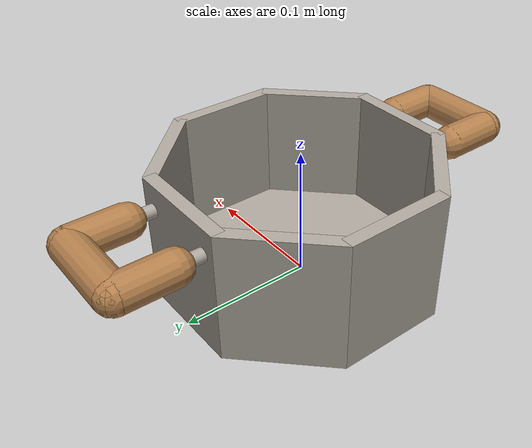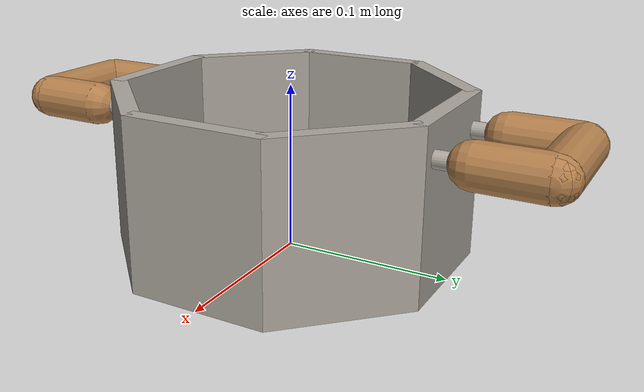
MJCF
<?xml version="1.0" encoding="utf-8"?>
<!-- from https://github.com/vikashplus/mj_envs/tree/master/mj_envs/hand_manipulation_suite/assets -->
<!-- Information about door can be found in this paper: https://arxiv.org/pdf/1709.10087.pdf -->

<mujoco model="microwave">
  <asset>
    <texture file="../textures/light-wood.png" type="cube" name="light-wood" />
    <texture file="../textures/steel-brushed.png" type="cube" name="steel" />
    <material name="MatSteel" texture="steel" specular="1" shininess="0.3" rgba="0.9 0.9 0.9 1" />
    <material name="MatLightWood" texture="light-wood" texrepeat="3 3" specular="0.4" shininess="0.1" />
  </asset>

  <worldbody>
    <body>
      <body name="object">
        <inertial pos="0 0 0" mass="0.1" diaginertia="0.00052 0.00052 0.001"/>
        <site name="origin" pos="0 0 0" rgba="0 0 0 0" size="0.005"/>

        <geom name="geom_bottom_visual"
          pos="0 0 0.005"
          size="0.1 0.005" type="cylinder"
          group="1" contype="0" conaffinity="0"
	  material="MatSteel"
          />

        <geom name="geom_bottom"
          pos="0 0 0.005"
          size="0.1 0.1 0.005" type="box"
	  group="0"
	  friction="1 1 1"
	  rgba="0 0 0 0"
	  />

        <geom name="geom_wall1_visual"
          pos="0.095 0 0.05"
          size="0.005 0.0414214 0.05" type="box"
          group="1" contype="0" conaffinity="0"
          material="MatSteel"
          />
        <geom name="geom_wall2_visual"
          pos="-0.095 0 0.05"
          size="0.005 0.0414214 0.05" type="box"
          group="1" contype="0" conaffinity="0"
          material="MatSteel"
          />
        <geom name="geom_wall3_visual"
          pos="0 0.095 0.05" quat="0.707107 0 0 0.707107"
          size="0.005 0.0414214 0.05" type="box"
          group="1" contype="0" conaffinity="0"
          material="MatSteel"
          />
        <geom name="geom_wall4_visual"
          pos="0 -0.095 0.05" quat="0.707107 0 0 0.707107"
          size="0.005 0.0414214 0.05" type="box"
          group="1" contype="0" conaffinity="0"
          material="MatSteel"
          />
        <geom name="geom_wall5_visual"
          pos="0.0671751 0.0671751 0.05" quat="0.923880 0 0 0.382683"
          size="0.005 0.0414214 0.05" type="box"
          group="1" contype="0" conaffinity="0"
          material="MatSteel"
          />
        <geom name="geom_wall6_visual"
          pos="-0.0671751 -0.0671751 0.05" quat="0.923880 0 0 0.382683"
          size="0.005 0.0414214 0.05" type="box"
          group="1" contype="0" conaffinity="0"
          material="MatSteel"
          />
        <geom name="geom_wall7_visual"
          pos="-0.0671751 0.0671751 0.05" quat="0.382683 0 0 0.923880"
          size="0.005 0.0414214 0.05" type="box"
          group="1" contype="0" conaffinity="0"
          material="MatSteel"
          />
        <geom name="geom_wall8_visual"
          pos=" 0.0671751 -0.0671751 0.05" quat="0.382683 0 0 0.923880"
          size="0.005 0.0414214 0.05" type="box"
          group="1" contype="0" conaffinity="0"
          material="MatSteel"
          />

        <geom name="geom_wall1"
          pos="0.095 0 0.055"
          size="0.005 0.0414214 0.045" type="box"
          group="0"
          rgba="0 0 0 0"
          />
        <geom name="geom_wall2"
          pos="-0.095 0 0.055"
          size="0.005 0.0414214 0.045" type="box"
          group="0"
          rgba="0 0 0 0"
          />
        <geom name="geom_wall3"
          pos="0 0.095 0.055" quat="0.707107 0 0 0.707107"
          size="0.005 0.0414214 0.045" type="box"
          group="0"
          rgba="0 0 0 0"
          />
        <geom name="geom_wall4"
          pos="0 -0.095 0.055" quat="0.707107 0 0 0.707107"
          size="0.005 0.0414214 0.045" type="box"
          group="0"
          rgba="0 0 0 0"
          />
        <geom name="geom_wall5"
          pos="0.0671751 0.0671751 0.055" quat="0.923880 0 0 0.382683"
          size="0.005 0.0414214 0.045" type="box"
          group="0"
          rgba="0 0 0 0"
          />
        <geom name="geom_wall6"
          pos="-0.0671751 -0.0671751 0.055" quat="0.923880 0 0 0.382683"
          size="0.005 0.0414214 0.045" type="box"
          group="0"
          rgba="0 0 0 0"
          />
        <geom name="geom_wall7"
          pos="-0.0671751 0.0671751 0.055" quat="0.382683 0 0 0.923880"
          size="0.005 0.0414214 0.045" type="box"
          group="0"
          rgba="0 0 0 0"
          />
        <geom name="geom_wall8"
          pos=" 0.0671751 -0.0671751 0.055" quat="0.382683 0 0 0.923880"
          size="0.005 0.0414214 0.045" type="box"
          group="0"
          rgba="0 0 0 0"
          />

        <body name="left_handle" pos="0 -0.1 0.08">
          <geom name="geom_left_root1"
            fromto=" 0.03  0    0  0.03 -0.02 0" size="0.005" type="capsule"
            group="1" contype="0" conaffinity="0"
            material="MatSteel"/>
          <geom name="geom_left_root2_visual"
            fromto="-0.03  0    0 -0.03 -0.02 0" size="0.005" type="capsule"
            group="1" contype="0" conaffinity="0"
            material="MatSteel"/>
          <geom name="geom_left_handle1_visual"
            fromto=" 0.03 -0.02 0  0.03 -0.06 0" size="0.013"  type="capsule"
            group="1" contype="0" conaffinity="0"
            material="MatLightWood"/>
          <geom name="geom_left_handle2_visual"
            fromto="-0.03 -0.02 0 -0.03 -0.06 0" size="0.013"  type="capsule"
            group="1" contype="0" conaffinity="0"
            material="MatLightWood"/>
          <geom  name="geom_left_handle3_visual"
            fromto="-0.03 -0.06 0  0.03 -0.06 0" size="0.013"  type="capsule"
            group="1" contype="0" conaffinity="0"
            material="MatLightWood"/>
          <geom name="geom_left_handle"
            pos="0 -0.04 0" size="0.043 0.033 0.013" type="box"
            group="0" friction='1 1 1'
            rgba="0 0 0 0"
            />
          <site name="left_handle" pos="0 -0.04 0" size="0.02" rgba="0 0 1 0" />
        </body>

        <body name="right_handle" pos="0 0.1 0.08" quat="0 1 0 0">
          <geom name="geom_right_root1_visual"
            fromto=" 0.03  0    0  0.03 -0.02 0" size="0.005" type="cylinder"
            group="1" contype="0" conaffinity="0"
            material="MatSteel"/>
          <geom name="geom_right_root2_visual"
            fromto="-0.03  0    0 -0.03 -0.02 0" size="0.005" type="cylinder"
            group="1" contype="0" conaffinity="0"
            material="MatSteel"/>
          <geom name="geom_right_handle1_visual"
            fromto=" 0.03 -0.02 0  0.03 -0.06 0" size="0.013"  type="capsule"
            group="1" contype="0" conaffinity="0"
            material="MatLightWood"/>
          <geom name="geom_right_handle2_visual"
            fromto="-0.03 -0.02 0 -0.03 -0.06 0" size="0.013"  type="capsule"
            group="1" contype="0" conaffinity="0"
            material="MatLightWood"/>
          <geom name="geom_right_handle3_visual"
            fromto="-0.03 -0.06 0  0.03 -0.06 0" size="0.013"  type="capsule"
            group="1" contype="0" conaffinity="0"
            material="MatLightWood"/>
          <geom name="geom_right_handle"
            pos="0 -0.04 0" size="0.043 0.033 0.013" type="box"
            group="0" friction='1 1 1'
            rgba="0 0 0 0"
            />
          <site name="right_handle" pos="0 -0.04 0" size="0.02" rgba="0 0 1 0" />
        </body>

      </body>
      <site name="bottom_site" pos="0 0 -0.0207" rgba="0 0 0 0" size="0.005"/>
      <site name="top_site" pos="0 0 0.007" rgba="0 0 0 0" size="0.005"/>
      <site name="horizontal_radius_site" pos="0 0 0" rgba="0 0 0 0" size="0.003"/>
    </body>

  </worldbody>
</mujoco>
